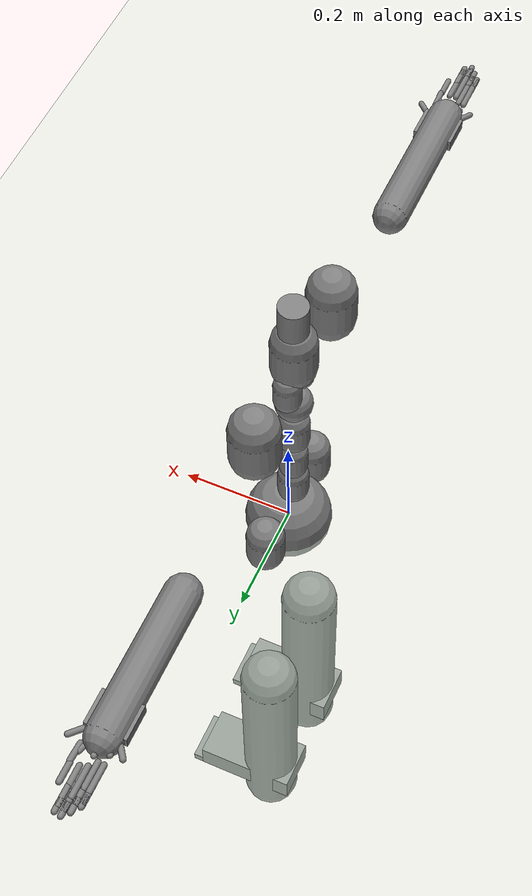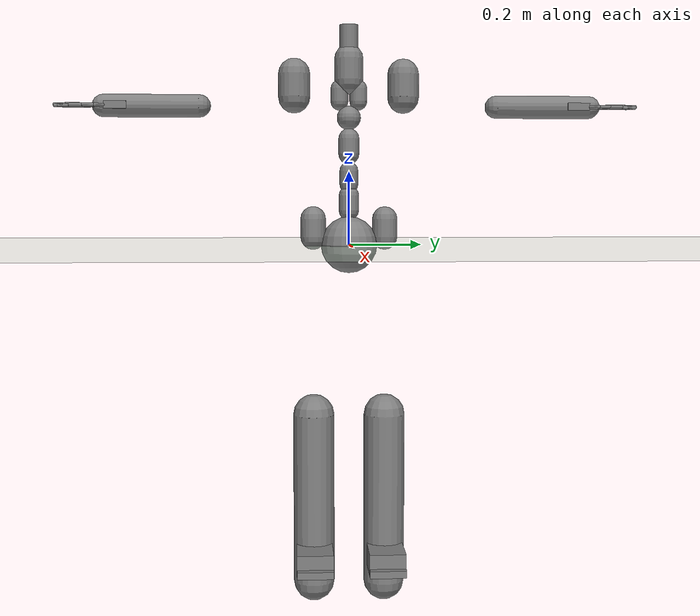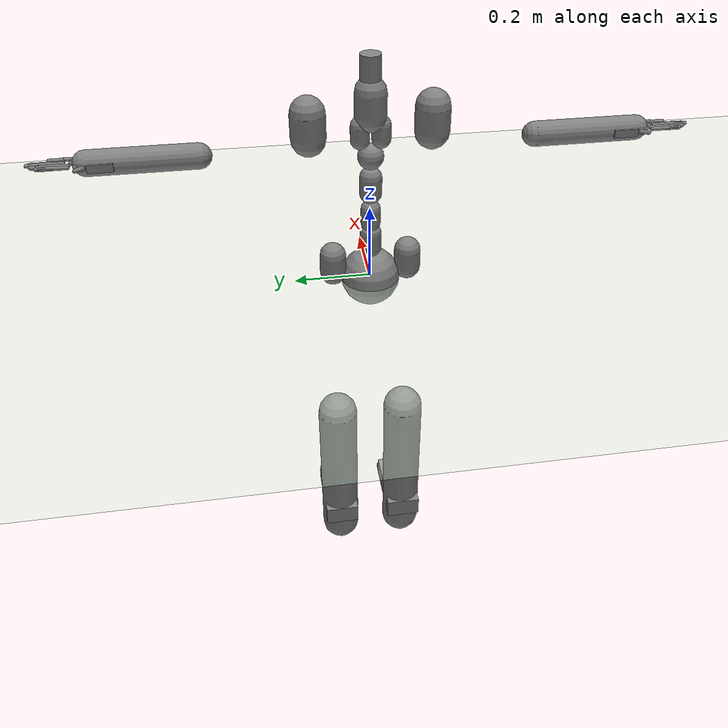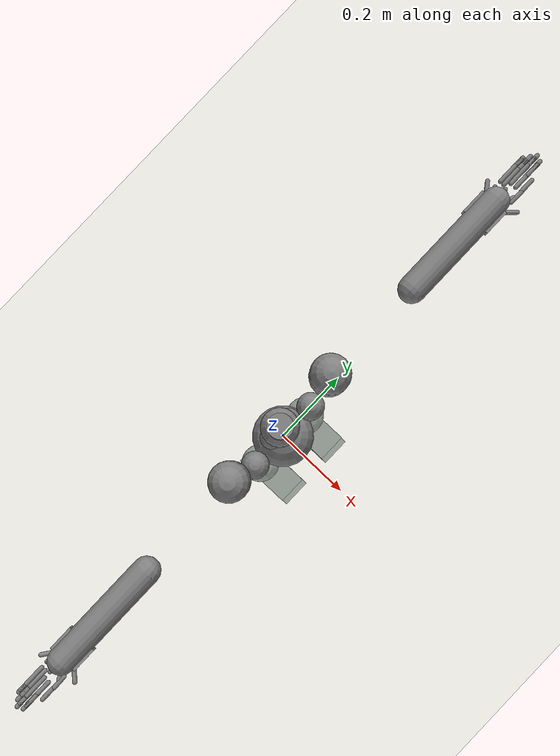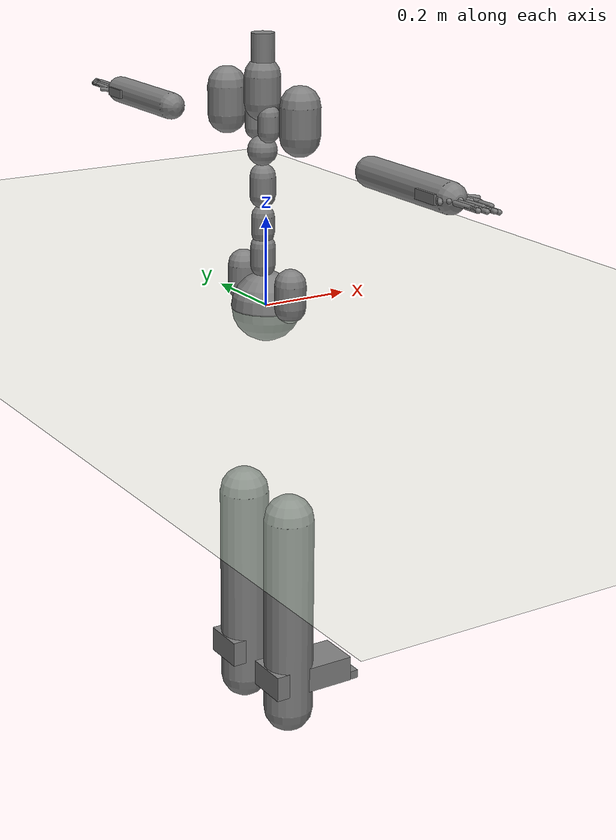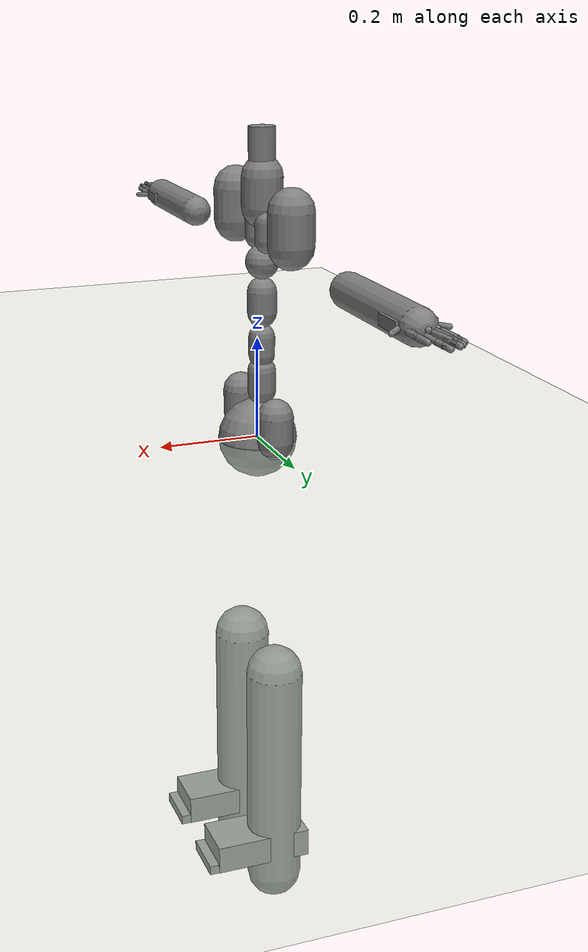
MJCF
<?xml version="1.0" ?>
<mujoco model="humanoid">
  <compiler coordinate="local"/>
  <statistic extent="2" center="0 0 1"/>
  <option timestep="0.00555"/>
  <default>
    <motor ctrlrange="-1 1" ctrllimited="true"/>
    <geom type="capsule" condim="1" friction="1.0 0.05 0.05" solimp=".9 .99 .003" solref=".015 1"/>
    <joint type="hinge" damping="0.1" stiffness="5" armature=".007" limited="true" solimplimit="0 .99 .01"/>
    <site size=".04" group="3"/>
  </default>
  <asset>
    <texture type="skybox" builtin="gradient" rgb1=".4 .5 .6" rgb2="0 0 0" width="100" height="100"/>
    <texture builtin="flat" height="1278" mark="cross" markrgb="1 1 1" name="texgeom" random="0.01" rgb1="0.8 0.6 0.4" rgb2="0.8 0.6 0.4" type="cube" width="127"/>
    <texture builtin="checker" height="100" name="texplane" rgb1="0 0 0" rgb2="0.8 0.8 0.8" type="2d" width="100"/>
    <material name="MatPlane" reflectance="0.5" shininess="1" specular="1" texrepeat="60 60" texture="texplane"/>
    <material name="geom" texture="texgeom" texuniform="true"/>
  </asset>
  <worldbody>
    <light cutoff="100" diffuse="1 1 1" dir="-0 0 -1.3" directional="true" exponent="1" pos="0 0 1.3" specular=".1 .1 .1"/>
    <geom conaffinity="1" condim="3" name="floor" pos="0 0 0" rgba="0.8 0.9 0.8 1" size="100 100 .2" type="plane" material="MatPlane"/>
    <body name="pHipOrigin" pos="0 0 0">
      <freejoint name="pHipOrigin"/>
      <geom type="sphere" contype="1" conaffinity="1" density="4629.6296296296305" size="0.07771" pos="0.0000 0.0000 -0.0000"/>
      <body name="jL5S1" pos="-0.00875720 0 0.07881458">
        <geom type="capsule" contype="1" conaffinity="1" density="1000" fromto="0 0 0.01586 0 0 0.05551" size="0.02775"/>
        <joint name="jL5S1_x" type="hinge" pos="0 0 0" axis="1 0 0" stiffness="500" damping="500" armature="0.02" range="-180.0000 180.0000"/>
        <joint name="jL5S1_y" type="hinge" pos="0 0 0" axis="0 1 0" stiffness="500" damping="500" armature="0.02" range="-180.0000 180.0000"/>
        <joint name="jL5S1_z" type="hinge" pos="0 0 0" axis="0 0 1" stiffness="500" damping="500" armature="0.02" range="-180.0000 180.0000"/>
        <body name="jL4L3" pos="0 0 0.07258626">
          <geom type="capsule" contype="1" conaffinity="1" density="1000" fromto="0 0 0.01452 0 0 0.05081" size="0.02541"/>
          <joint name="jL4L3_x" type="hinge" pos="0 0 0" axis="1 0 0" stiffness="500" damping="500" armature="0.02" range="-180.0000 180.0000"/>
          <joint name="jL4L3_y" type="hinge" pos="0 0 0" axis="0 1 0" stiffness="500" damping="500" armature="0.02" range="-180.0000 180.0000"/>
          <joint name="jL4L3_z" type="hinge" pos="0 0 0" axis="0 0 1" stiffness="500" damping="500" armature="0.02" range="-180.0000 180.0000"/>
          <body name="jL1T12" pos="-0.00062804 0 0.08140562">
            <geom type="capsule" contype="1" conaffinity="1" density="1000" fromto="0 0 0.01628 0 0 0.05699" size="0.02849"/>
            <joint name="jL1T12_x" type="hinge" pos="0 0 0" axis="1 0 0" stiffness="500" damping="500" armature="0.02" range="-180.0000 180.0000"/>
            <joint name="jL1T12_y" type="hinge" pos="0 0 0" axis="0 1 0" stiffness="500" damping="500" armature="0.02" range="-180.0000 180.0000"/>
            <joint name="jL1T12_z" type="hinge" pos="0 0 0" axis="0 0 1" stiffness="500" damping="500" armature="0.02" range="-180.0000 180.0000"/>
            <body name="jT9T8" pos="-0.00062856 0 0.08131409">
              <geom type="sphere" contype="1" conaffinity="1" density="1000" size="0.03253" pos="0.000 0.0000 0.032527"/>
              <joint name="jT9T8_x" type="hinge" pos="0 0 0" axis="1 0 0" stiffness="500" damping="500" armature="0.02" range="-180.0000 180.0000"/>
              <joint name="jT9T8_y" type="hinge" pos="0 0 0" axis="0 1 0" stiffness="500" damping="500" armature="0.02" range="-180.0000 180.0000"/>
              <joint name="jT9T8_z" type="hinge" pos="0 0 0" axis="0 0 1" stiffness="500" damping="500" armature="0.02" range="-180.0000 180.0000"/>
              <body name="jT1C7" pos="0 0 0.11249700">
                <geom type="capsule" contype="1" conaffinity="1" density="1000" fromto="0 0 0.02250 0 0 0.07875" size="0.03937"/>
                <joint name="jT1C7_x" type="hinge" pos="0 0 0" axis="1 0 0" stiffness="500" damping="500" armature="0.02" range="-180.0000 180.0000"/>
                <joint name="jT1C7_y" type="hinge" pos="0 0 0" axis="0 1 0" stiffness="500" damping="500" armature="0.02" range="-180.0000 180.0000"/>
                <joint name="jT1C7_z" type="hinge" pos="0 0 0" axis="0 0 1" stiffness="500" damping="500" armature="0.02" range="-180.0000 180.0000"/>
                <body name="jC1Head" pos="0.00099683 0 0.08449399">
                  <geom type="cylinder" contype="1" conaffinity="1" density="1000" fromto="0 0 0 0 0 0.08450" size="0.02535"/>
                  <joint name="jC1Head_x" type="hinge" pos="0 0 0" axis="1 0 0" stiffness="500" damping="500" armature="0.02" range="-180.0000 180.0000"/>
                  <joint name="jC1Head_y" type="hinge" pos="0 0 0" axis="0 1 0" stiffness="500" damping="500" armature="0.02" range="-180.0000 180.0000"/>
                  <joint name="jC1Head_z" type="hinge" pos="0 0 0" axis="0 0 1" stiffness="500" damping="500" armature="0.02" range="-180.0000 180.0000"/>
                </body>
              </body>
              <body name="jRightT4Shoulder" pos="0 -0.02588692 0.06311798">
                <geom type="capsule" contype="1" conaffinity="1" density="1000" fromto="0 0 0.01364 0 0 0.04775" size="0.02388"/>
                <joint name="jRightT4Shoulder_x" type="hinge" pos="0 0 0" axis="1 0 0" stiffness="500" damping="500" armature="0.02" range="-180.0000 180.0000"/>
                <joint name="jRightT4Shoulder_y" type="hinge" pos="0 0 0" axis="0 1 0" stiffness="500" damping="500" armature="0.02" range="-180.0000 180.0000"/>
                <joint name="jRightT4Shoulder_z" type="hinge" pos="0 0 0" axis="0 0 1" stiffness="500" damping="500" armature="0.02" range="-180.0000 180.0000"/>
                <body name="jRightShoulder" pos="0 -0.12351258 0">
                  <geom type="capsule" contype="1" conaffinity="1" density="1000" fromto="0 0 0.02470 0 0 0.08646" size="0.04323"/>
                  <joint name="jRightShoulder_x" type="hinge" pos="0 0 0" axis="1 0 0" stiffness="500" damping="500" armature="0.02" range="-180.0000 180.0000"/>
                  <joint name="jRightShoulder_y" type="hinge" pos="0 0 0" axis="0 1 0" stiffness="500" damping="500" armature="0.02" range="-180.0000 180.0000"/>
                  <joint name="jRightShoulder_z" type="hinge" pos="0 0 0" axis="0 0 1" stiffness="500" damping="500" armature="0.02" range="-180.0000 180.0000"/>
                  <body name="jRightElbow" pos="0 -0.25775218 0">
                    <geom type="capsule" contype="1" conaffinity="1" density="1000" fromto="0 0 0 0.00000000 -0.25775218 0.00000000" size="0.03093"/>
                    <joint name="jRightElbow_x" type="hinge" pos="0 0 0" axis="1 0 0" stiffness="500" damping="500" armature="0.02" range="-180.0000 180.0000"/>
                    <joint name="jRightElbow_y" type="hinge" pos="0 0 0" axis="0 1 0" stiffness="500" damping="500" armature="0.02" range="-180.0000 180.0000"/>
                    <joint name="jRightElbow_z" type="hinge" pos="0 0 0" axis="0 0 1" stiffness="500" damping="500" armature="0.02" range="-180.0000 180.0000"/>
                    <body name="jRightWrist" pos="0.00008984 -0.22320440 0">
                      <geom density="1000" type="box" pos="0 0 0" size="0.035 0.03 0.01" quat="1.0000 0.0000 0.0000 0.0000"/>
                      <joint name="jRightWrist_x" type="hinge" pos="0 0 0" axis="1 0 0" stiffness="500" damping="500" armature="0.02" range="-180.0000 180.0000"/>
                      <joint name="jRightWrist_y" type="hinge" pos="0 0 0" axis="0 1 0" stiffness="500" damping="500" armature="0.02" range="-180.0000 180.0000"/>
                      <joint name="jRightWrist_z" type="hinge" pos="0 0 0" axis="0 0 1" stiffness="500" damping="500" armature="0.02" range="-180.0000 180.0000"/>
                      <body name="jRightFirstCMC" pos="0.02561320 -0.02455169 -0.00115992">
                        <geom type="capsule" contype="1" conaffinity="1" density="1000" fromto="0 0 0 0.02561320 -0.02455169 -0.00115992" size="0.005"/>
                        <joint name="jRightFirstCMC_x" type="hinge" pos="0 0 0" axis="1 0 0" stiffness="500" damping="500" armature="0.02" range="-180.0000 180.0000"/>
                        <joint name="jRightFirstCMC_y" type="hinge" pos="0 0 0" axis="0 1 0" stiffness="500" damping="500" armature="0.02" range="-180.0000 180.0000"/>
                        <joint name="jRightFirstCMC_z" type="hinge" pos="0 0 0" axis="0 0 1" stiffness="500" damping="500" armature="0.02" range="-180.0000 180.0000"/>
                        <body name="jRightFirstMCP" pos="0.00108986 -0.03075519 0.00064986">
                          <geom type="capsule" contype="1" conaffinity="1" density="1000" fromto="0 0 0 0.00108986 -0.03075519 0.00064986" size="0.005"/>
                          <joint name="jRightFirstMCP_x" type="hinge" pos="0 0 0" axis="1 0 0" stiffness="500" damping="500" armature="0.02" range="-180.0000 180.0000"/>
                          <joint name="jRightFirstMCP_y" type="hinge" pos="0 0 0" axis="0 1 0" stiffness="500" damping="500" armature="0.02" range="-180.0000 180.0000"/>
                          <joint name="jRightFirstMCP_z" type="hinge" pos="0 0 0" axis="0 0 1" stiffness="500" damping="500" armature="0.02" range="-180.0000 180.0000"/>
                          <body name="jRightIP" pos="0 -0.03230968 0">
                            <geom type="capsule" contype="1" conaffinity="1" density="1000" fromto="0 0 0 0.00000000 -0.03230968 0.00000000" size="0.005"/>
                            <joint name="jRightIP_x" type="hinge" pos="0 0 0" axis="1 0 0" stiffness="500" damping="500" armature="0.02" range="-180.0000 180.0000"/>
                            <joint name="jRightIP_y" type="hinge" pos="0 0 0" axis="0 1 0" stiffness="500" damping="500" armature="0.02" range="-180.0000 180.0000"/>
                            <joint name="jRightIP_z" type="hinge" pos="0 0 0" axis="0 0 1" stiffness="500" damping="500" armature="0.02" range="-180.0000 180.0000"/>
                          </body>
                        </body>
                      </body>
                      <body name="jRightSecondCMC" pos="0.01160341 -0.03390149 -0.00059132">
                        <geom type="capsule" contype="1" conaffinity="1" density="1000" fromto="0 0 0 0.01160341 -0.03390149 -0.00059132" size="0.005"/>
                        <joint name="jRightSecondCMC_x" type="hinge" pos="0 0 0" axis="1 0 0" stiffness="500" damping="500" armature="0.02" range="-180.0000 180.0000"/>
                        <joint name="jRightSecondCMC_y" type="hinge" pos="0 0 0" axis="0 1 0" stiffness="500" damping="500" armature="0.02" range="-180.0000 180.0000"/>
                        <joint name="jRightSecondCMC_z" type="hinge" pos="0 0 0" axis="0 0 1" stiffness="500" damping="500" armature="0.02" range="-180.0000 180.0000"/>
                        <body name="jRightSecondMCP" pos="-0.00033284 -0.05308607 -0.00055068">
                          <geom type="capsule" contype="1" conaffinity="1" density="1000" fromto="0 0 0 -0.00033284 -0.05308607 -0.00055068" size="0.005"/>
                          <joint name="jRightSecondMCP_x" type="hinge" pos="0 0 0" axis="1 0 0" stiffness="500" damping="500" armature="0.02" range="-180.0000 180.0000"/>
                          <joint name="jRightSecondMCP_y" type="hinge" pos="0 0 0" axis="0 1 0" stiffness="500" damping="500" armature="0.02" range="-180.0000 180.0000"/>
                          <joint name="jRightSecondMCP_z" type="hinge" pos="0 0 0" axis="0 0 1" stiffness="500" damping="500" armature="0.02" range="-180.0000 180.0000"/>
                          <body name="jRightSecondPIP" pos="0 -0.03424454 0">
                            <geom type="capsule" contype="1" conaffinity="1" density="1000" fromto="0 0 0 0.00000000 -0.03424454 0.00000000" size="0.005"/>
                            <joint name="jRightSecondPIP_x" type="hinge" pos="0 0 0" axis="1 0 0" stiffness="500" damping="500" armature="0.02" range="-180.0000 180.0000"/>
                            <joint name="jRightSecondPIP_y" type="hinge" pos="0 0 0" axis="0 1 0" stiffness="500" damping="500" armature="0.02" range="-180.0000 180.0000"/>
                            <joint name="jRightSecondPIP_z" type="hinge" pos="0 0 0" axis="0 0 1" stiffness="500" damping="500" armature="0.02" range="-180.0000 180.0000"/>
                            <body name="jRightSecondDIP" pos="0 -0.02055949 0">
                              <geom type="capsule" contype="1" conaffinity="1" density="1000" fromto="0 0 0 0.00000000 -0.02055949 0.00000000" size="0.005"/>
                              <joint name="jRightSecondDIP_x" type="hinge" pos="0 0 0" axis="1 0 0" stiffness="500" damping="500" armature="0.02" range="-180.0000 180.0000"/>
                              <joint name="jRightSecondDIP_y" type="hinge" pos="0 0 0" axis="0 1 0" stiffness="500" damping="500" armature="0.02" range="-180.0000 180.0000"/>
                              <joint name="jRightSecondDIP_z" type="hinge" pos="0 0 0" axis="0 0 1" stiffness="500" damping="500" armature="0.02" range="-180.0000 180.0000"/>
                            </body>
                          </body>
                        </body>
                      </body>
                      <body name="jRightThirdCMC" pos="-0.00061558 -0.03328935 0.00139953">
                        <geom type="capsule" contype="1" conaffinity="1" density="1000" fromto="0 0 0 -0.00061558 -0.03328935 0.00139953" size="0.005"/>
                        <joint name="jRightThirdCMC_x" type="hinge" pos="0 0 0" axis="1 0 0" stiffness="500" damping="500" armature="0.02" range="-180.0000 180.0000"/>
                        <joint name="jRightThirdCMC_y" type="hinge" pos="0 0 0" axis="0 1 0" stiffness="500" damping="500" armature="0.02" range="-180.0000 180.0000"/>
                        <joint name="jRightThirdCMC_z" type="hinge" pos="0 0 0" axis="0 0 1" stiffness="500" damping="500" armature="0.02" range="-180.0000 180.0000"/>
                        <body name="jRightThirdMCP" pos="-0.00061702 -0.05111980 0.00139077">
                          <geom type="capsule" contype="1" conaffinity="1" density="1000" fromto="0 0 0 -0.00061702 -0.05111980 0.00139077" size="0.005"/>
                          <joint name="jRightThirdMCP_x" type="hinge" pos="0 0 0" axis="1 0 0" stiffness="500" damping="500" armature="0.02" range="-180.0000 180.0000"/>
                          <joint name="jRightThirdMCP_y" type="hinge" pos="0 0 0" axis="0 1 0" stiffness="500" damping="500" armature="0.02" range="-180.0000 180.0000"/>
                          <joint name="jRightThirdMCP_z" type="hinge" pos="0 0 0" axis="0 0 1" stiffness="500" damping="500" armature="0.02" range="-180.0000 180.0000"/>
                          <body name="jRightThirdPIP" pos="0 -0.03745836 0">
                            <geom type="capsule" contype="1" conaffinity="1" density="1000" fromto="0 0 0 0.00000000 -0.03745836 0.00000000" size="0.005"/>
                            <joint name="jRightThirdPIP_x" type="hinge" pos="0 0 0" axis="1 0 0" stiffness="500" damping="500" armature="0.02" range="-180.0000 180.0000"/>
                            <joint name="jRightThirdPIP_y" type="hinge" pos="0 0 0" axis="0 1 0" stiffness="500" damping="500" armature="0.02" range="-180.0000 180.0000"/>
                            <joint name="jRightThirdPIP_z" type="hinge" pos="0 0 0" axis="0 0 1" stiffness="500" damping="500" armature="0.02" range="-180.0000 180.0000"/>
                            <body name="jRightThirdDIP" pos="0 -0.02212986 0">
                              <geom type="capsule" contype="1" conaffinity="1" density="1000" fromto="0 0 0 0.00000000 -0.02212986 0.00000000" size="0.005"/>
                              <joint name="jRightThirdDIP_x" type="hinge" pos="0 0 0" axis="1 0 0" stiffness="500" damping="500" armature="0.02" range="-180.0000 180.0000"/>
                              <joint name="jRightThirdDIP_y" type="hinge" pos="0 0 0" axis="0 1 0" stiffness="500" damping="500" armature="0.02" range="-180.0000 180.0000"/>
                              <joint name="jRightThirdDIP_z" type="hinge" pos="0 0 0" axis="0 0 1" stiffness="500" damping="500" armature="0.02" range="-180.0000 180.0000"/>
                            </body>
                          </body>
                        </body>
                      </body>
                      <body name="jRightFourthCMC" pos="-0.01015717 -0.02828940 0.00066589">
                        <geom type="capsule" contype="1" conaffinity="1" density="1000" fromto="0 0 0 -0.01015717 -0.02828940 0.00066589" size="0.005"/>
                        <joint name="jRightFourthCMC_x" type="hinge" pos="0 0 0" axis="1 0 0" stiffness="500" damping="500" armature="0.02" range="-180.0000 180.0000"/>
                        <joint name="jRightFourthCMC_y" type="hinge" pos="0 0 0" axis="0 1 0" stiffness="500" damping="500" armature="0.02" range="-180.0000 180.0000"/>
                        <joint name="jRightFourthCMC_z" type="hinge" pos="0 0 0" axis="0 0 1" stiffness="500" damping="500" armature="0.02" range="-180.0000 180.0000"/>
                        <body name="jRightFourthMCP" pos="-0.00032481 -0.04451847 0.00069942">
                          <geom type="capsule" contype="1" conaffinity="1" density="1000" fromto="0 0 0 -0.00032481 -0.04451847 0.00069942" size="0.005"/>
                          <joint name="jRightFourthMCP_x" type="hinge" pos="0 0 0" axis="1 0 0" stiffness="500" damping="500" armature="0.02" range="-180.0000 180.0000"/>
                          <joint name="jRightFourthMCP_y" type="hinge" pos="0 0 0" axis="0 1 0" stiffness="500" damping="500" armature="0.02" range="-180.0000 180.0000"/>
                          <joint name="jRightFourthMCP_z" type="hinge" pos="0 0 0" axis="0 0 1" stiffness="500" damping="500" armature="0.02" range="-180.0000 180.0000"/>
                          <body name="jRightFourthPIP" pos="0 -0.03571399 0">
                            <geom type="capsule" contype="1" conaffinity="1" density="1000" fromto="0 0 0 0.00000000 -0.03571399 0.00000000" size="0.005"/>
                            <joint name="jRightFourthPIP_x" type="hinge" pos="0 0 0" axis="1 0 0" stiffness="500" damping="500" armature="0.02" range="-180.0000 180.0000"/>
                            <joint name="jRightFourthPIP_y" type="hinge" pos="0 0 0" axis="0 1 0" stiffness="500" damping="500" armature="0.02" range="-180.0000 180.0000"/>
                            <joint name="jRightFourthPIP_z" type="hinge" pos="0 0 0" axis="0 0 1" stiffness="500" damping="500" armature="0.02" range="-180.0000 180.0000"/>
                            <body name="jRightFourthDIP" pos="0 -0.02347310 0">
                              <geom type="capsule" contype="1" conaffinity="1" density="1000" fromto="0 0 0 0.00000000 -0.02347310 0.00000000" size="0.005"/>
                              <joint name="jRightFourthDIP_x" type="hinge" pos="0 0 0" axis="1 0 0" stiffness="500" damping="500" armature="0.02" range="-180.0000 180.0000"/>
                              <joint name="jRightFourthDIP_y" type="hinge" pos="0 0 0" axis="0 1 0" stiffness="500" damping="500" armature="0.02" range="-180.0000 180.0000"/>
                              <joint name="jRightFourthDIP_z" type="hinge" pos="0 0 0" axis="0 0 1" stiffness="500" damping="500" armature="0.02" range="-180.0000 180.0000"/>
                            </body>
                          </body>
                        </body>
                      </body>
                      <body name="jRightFifthCMC" pos="-0.01986545 -0.02768024 0.00054604">
                        <geom type="capsule" contype="1" conaffinity="1" density="1000" fromto="0 0 0 -0.01986545 -0.02768024 0.00054604" size="0.005"/>
                        <joint name="jRightFifthCMC_x" type="hinge" pos="0 0 0" axis="1 0 0" stiffness="500" damping="500" armature="0.02" range="-180.0000 180.0000"/>
                        <joint name="jRightFifthCMC_y" type="hinge" pos="0 0 0" axis="0 1 0" stiffness="500" damping="500" armature="0.02" range="-180.0000 180.0000"/>
                        <joint name="jRightFifthCMC_z" type="hinge" pos="0 0 0" axis="0 0 1" stiffness="500" damping="500" armature="0.02" range="-180.0000 180.0000"/>
                        <body name="jRightFifthMCP" pos="-0.00000676 -0.04575183 0.00062960">
                          <geom type="capsule" contype="1" conaffinity="1" density="1000" fromto="0 0 0 -0.00000676 -0.04575183 0.00062960" size="0.005"/>
                          <joint name="jRightFifthMCP_x" type="hinge" pos="0 0 0" axis="1 0 0" stiffness="500" damping="500" armature="0.02" range="-180.0000 180.0000"/>
                          <joint name="jRightFifthMCP_y" type="hinge" pos="0 0 0" axis="0 1 0" stiffness="500" damping="500" armature="0.02" range="-180.0000 180.0000"/>
                          <joint name="jRightFifthMCP_z" type="hinge" pos="0 0 0" axis="0 0 1" stiffness="500" damping="500" armature="0.02" range="-180.0000 180.0000"/>
                          <body name="jRightFifthPIP" pos="0 -0.03303117 0">
                            <geom type="capsule" contype="1" conaffinity="1" density="1000" fromto="0 0 0 0.00000000 -0.03303117 0.00000000" size="0.005"/>
                            <joint name="jRightFifthPIP_x" type="hinge" pos="0 0 0" axis="1 0 0" stiffness="500" damping="500" armature="0.02" range="-180.0000 180.0000"/>
                            <joint name="jRightFifthPIP_y" type="hinge" pos="0 0 0" axis="0 1 0" stiffness="500" damping="500" armature="0.02" range="-180.0000 180.0000"/>
                            <joint name="jRightFifthPIP_z" type="hinge" pos="0 0 0" axis="0 0 1" stiffness="500" damping="500" armature="0.02" range="-180.0000 180.0000"/>
                            <body name="jRightFifthDIP" pos="0 -0.01798905 0">
                              <geom type="capsule" contype="1" conaffinity="1" density="1000" fromto="0 0 0 0.00000000 -0.01798905 0.00000000" size="0.005"/>
                              <joint name="jRightFifthDIP_x" type="hinge" pos="0 0 0" axis="1 0 0" stiffness="500" damping="500" armature="0.02" range="-180.0000 180.0000"/>
                              <joint name="jRightFifthDIP_y" type="hinge" pos="0 0 0" axis="0 1 0" stiffness="500" damping="500" armature="0.02" range="-180.0000 180.0000"/>
                              <joint name="jRightFifthDIP_z" type="hinge" pos="0 0 0" axis="0 0 1" stiffness="500" damping="500" armature="0.02" range="-180.0000 180.0000"/>
                            </body>
                          </body>
                        </body>
                      </body>
                    </body>
                  </body>
                </body>
              </body>
              <body name="jLeftT4Shoulder" pos="0 0.02591224 0.06317973">
                <geom type="capsule" contype="1" conaffinity="1" density="1000" fromto="0 0 0.01366 0 0 0.04780" size="0.02390"/>
                <joint name="jLeftT4Shoulder_x" type="hinge" pos="0 0 0" axis="1 0 0" stiffness="500" damping="500" armature="0.02" range="-180.0000 180.0000"/>
                <joint name="jLeftT4Shoulder_y" type="hinge" pos="0 0 0" axis="0 1 0" stiffness="500" damping="500" armature="0.02" range="-180.0000 180.0000"/>
                <joint name="jLeftT4Shoulder_z" type="hinge" pos="0 0 0" axis="0 0 1" stiffness="500" damping="500" armature="0.02" range="-180.0000 180.0000"/>
                <body name="jLeftShoulder" pos="0 0.12311524 0">
                  <geom type="capsule" contype="1" conaffinity="1" density="1000" fromto="0 0 0.02462 0 0 0.08618" size="0.04309"/>
                  <joint name="jLeftShoulder_x" type="hinge" pos="0 0 0" axis="1 0 0" stiffness="500" damping="500" armature="0.02" range="-180.0000 180.0000"/>
                  <joint name="jLeftShoulder_y" type="hinge" pos="0 0 0" axis="0 1 0" stiffness="500" damping="500" armature="0.02" range="-180.0000 180.0000"/>
                  <joint name="jLeftShoulder_z" type="hinge" pos="0 0 0" axis="0 0 1" stiffness="500" damping="500" armature="0.02" range="-180.0000 180.0000"/>
                  <body name="jLeftElbow" pos="0 0.25745028 0">
                    <geom type="capsule" contype="1" conaffinity="1" density="1000" fromto="0 0 0 0.00000000 0.25745028 0.00000000" size="0.03089"/>
                    <joint name="jLeftElbow_x" type="hinge" pos="0 0 0" axis="1 0 0" stiffness="500" damping="500" armature="0.02" range="-180.0000 180.0000"/>
                    <joint name="jLeftElbow_y" type="hinge" pos="0 0 0" axis="0 1 0" stiffness="500" damping="500" armature="0.02" range="-180.0000 180.0000"/>
                    <joint name="jLeftElbow_z" type="hinge" pos="0 0 0" axis="0 0 1" stiffness="500" damping="500" armature="0.02" range="-180.0000 180.0000"/>
                    <body name="jLeftWrist" pos="0.00008975 0.22298450 0">
                      <geom density="1000" type="box" pos="0 0 0" size="0.035 0.03 0.01" quat="1.0000 0.0000 0.0000 0.0000"/>
                      <joint name="jLeftWrist_x" type="hinge" pos="0 0 0" axis="1 0 0" stiffness="500" damping="500" armature="0.02" range="-180.0000 180.0000"/>
                      <joint name="jLeftWrist_y" type="hinge" pos="0 0 0" axis="0 1 0" stiffness="500" damping="500" armature="0.02" range="-180.0000 180.0000"/>
                      <joint name="jLeftWrist_z" type="hinge" pos="0 0 0" axis="0 0 1" stiffness="500" damping="500" armature="0.02" range="-180.0000 180.0000"/>
                      <body name="jLeftFirstCMC" pos="0.02506929 0.02512849 -0.00112202">
                        <geom type="capsule" contype="1" conaffinity="1" density="1000" fromto="0 0 0 0.02506929 0.02512849 -0.00112202" size="0.005"/>
                        <joint name="jLeftFirstCMC_x" type="hinge" pos="0 0 0" axis="1 0 0" stiffness="500" damping="500" armature="0.02" range="-180.0000 180.0000"/>
                        <joint name="jLeftFirstCMC_y" type="hinge" pos="0 0 0" axis="0 1 0" stiffness="500" damping="500" armature="0.02" range="-180.0000 180.0000"/>
                        <joint name="jLeftFirstCMC_z" type="hinge" pos="0 0 0" axis="0 0 1" stiffness="500" damping="500" armature="0.02" range="-180.0000 180.0000"/>
                        <body name="jLeftFirstMCP" pos="0.00107936 0.03075450 0.00063331">
                          <geom type="capsule" contype="1" conaffinity="1" density="1000" fromto="0 0 0 0.00107936 0.03075450 0.00063331" size="0.005"/>
                          <joint name="jLeftFirstMCP_x" type="hinge" pos="0 0 0" axis="1 0 0" stiffness="500" damping="500" armature="0.02" range="-180.0000 180.0000"/>
                          <joint name="jLeftFirstMCP_y" type="hinge" pos="0 0 0" axis="0 1 0" stiffness="500" damping="500" armature="0.02" range="-180.0000 180.0000"/>
                          <joint name="jLeftFirstMCP_z" type="hinge" pos="0 0 0" axis="0 0 1" stiffness="500" damping="500" armature="0.02" range="-180.0000 180.0000"/>
                          <body name="jLeftIP" pos="0 0.03230968 0">
                            <geom type="capsule" contype="1" conaffinity="1" density="1000" fromto="0 0 0 0.00000000 0.03230968 0.00000000" size="0.005"/>
                            <joint name="jLeftIP_x" type="hinge" pos="0 0 0" axis="1 0 0" stiffness="500" damping="500" armature="0.02" range="-180.0000 180.0000"/>
                            <joint name="jLeftIP_y" type="hinge" pos="0 0 0" axis="0 1 0" stiffness="500" damping="500" armature="0.02" range="-180.0000 180.0000"/>
                            <joint name="jLeftIP_z" type="hinge" pos="0 0 0" axis="0 0 1" stiffness="500" damping="500" armature="0.02" range="-180.0000 180.0000"/>
                          </body>
                        </body>
                      </body>
                      <body name="jLeftSecondCMC" pos="0.01173706 0.03383911 -0.00059621">
                        <geom type="capsule" contype="1" conaffinity="1" density="1000" fromto="0 0 0 0.01173706 0.03383911 -0.00059621" size="0.005"/>
                        <joint name="jLeftSecondCMC_x" type="hinge" pos="0 0 0" axis="1 0 0" stiffness="500" damping="500" armature="0.02" range="-180.0000 180.0000"/>
                        <joint name="jLeftSecondCMC_y" type="hinge" pos="0 0 0" axis="0 1 0" stiffness="500" damping="500" armature="0.02" range="-180.0000 180.0000"/>
                        <joint name="jLeftSecondCMC_z" type="hinge" pos="0 0 0" axis="0 0 1" stiffness="500" damping="500" armature="0.02" range="-180.0000 180.0000"/>
                        <body name="jLeftSecondMCP" pos="-0.00029022 0.05308716 -0.00055748">
                          <geom type="capsule" contype="1" conaffinity="1" density="1000" fromto="0 0 0 -0.00029022 0.05308716 -0.00055748" size="0.005"/>
                          <joint name="jLeftSecondMCP_x" type="hinge" pos="0 0 0" axis="1 0 0" stiffness="500" damping="500" armature="0.02" range="-180.0000 180.0000"/>
                          <joint name="jLeftSecondMCP_y" type="hinge" pos="0 0 0" axis="0 1 0" stiffness="500" damping="500" armature="0.02" range="-180.0000 180.0000"/>
                          <joint name="jLeftSecondMCP_z" type="hinge" pos="0 0 0" axis="0 0 1" stiffness="500" damping="500" armature="0.02" range="-180.0000 180.0000"/>
                          <body name="jLeftSecondPIP" pos="0 0.03424454 0">
                            <geom type="capsule" contype="1" conaffinity="1" density="1000" fromto="0 0 0 0.00000000 0.03424454 0.00000000" size="0.005"/>
                            <joint name="jLeftSecondPIP_x" type="hinge" pos="0 0 0" axis="1 0 0" stiffness="500" damping="500" armature="0.02" range="-180.0000 180.0000"/>
                            <joint name="jLeftSecondPIP_y" type="hinge" pos="0 0 0" axis="0 1 0" stiffness="500" damping="500" armature="0.02" range="-180.0000 180.0000"/>
                            <joint name="jLeftSecondPIP_z" type="hinge" pos="0 0 0" axis="0 0 1" stiffness="500" damping="500" armature="0.02" range="-180.0000 180.0000"/>
                            <body name="jLeftSecondDIP" pos="0 0.02055949 0">
                              <geom type="capsule" contype="1" conaffinity="1" density="1000" fromto="0 0 0 0.00000000 0.02055949 0.00000000" size="0.005"/>
                              <joint name="jLeftSecondDIP_x" type="hinge" pos="0 0 0" axis="1 0 0" stiffness="500" damping="500" armature="0.02" range="-180.0000 180.0000"/>
                              <joint name="jLeftSecondDIP_y" type="hinge" pos="0 0 0" axis="0 1 0" stiffness="500" damping="500" armature="0.02" range="-180.0000 180.0000"/>
                              <joint name="jLeftSecondDIP_z" type="hinge" pos="0 0 0" axis="0 0 1" stiffness="500" damping="500" armature="0.02" range="-180.0000 180.0000"/>
                            </body>
                          </body>
                        </body>
                      </body>
                      <body name="jLeftThirdCMC" pos="-0.00061920 0.03329234 0.00135288">
                        <geom type="capsule" contype="1" conaffinity="1" density="1000" fromto="0 0 0 -0.00061920 0.03329234 0.00135288" size="0.005"/>
                        <joint name="jLeftThirdCMC_x" type="hinge" pos="0 0 0" axis="1 0 0" stiffness="500" damping="500" armature="0.02" range="-180.0000 180.0000"/>
                        <joint name="jLeftThirdCMC_y" type="hinge" pos="0 0 0" axis="0 1 0" stiffness="500" damping="500" armature="0.02" range="-180.0000 180.0000"/>
                        <joint name="jLeftThirdCMC_z" type="hinge" pos="0 0 0" axis="0 0 1" stiffness="500" damping="500" armature="0.02" range="-180.0000 180.0000"/>
                        <body name="jLeftThirdMCP" pos="-0.00062200 0.05112079 0.00136281">
                          <geom type="capsule" contype="1" conaffinity="1" density="1000" fromto="0 0 0 -0.00062200 0.05112079 0.00136281" size="0.005"/>
                          <joint name="jLeftThirdMCP_x" type="hinge" pos="0 0 0" axis="1 0 0" stiffness="500" damping="500" armature="0.02" range="-180.0000 180.0000"/>
                          <joint name="jLeftThirdMCP_y" type="hinge" pos="0 0 0" axis="0 1 0" stiffness="500" damping="500" armature="0.02" range="-180.0000 180.0000"/>
                          <joint name="jLeftThirdMCP_z" type="hinge" pos="0 0 0" axis="0 0 1" stiffness="500" damping="500" armature="0.02" range="-180.0000 180.0000"/>
                          <body name="jLeftThirdPIP" pos="0 0.03745836 0">
                            <geom type="capsule" contype="1" conaffinity="1" density="1000" fromto="0 0 0 0.00000000 0.03745836 0.00000000" size="0.005"/>
                            <joint name="jLeftThirdPIP_x" type="hinge" pos="0 0 0" axis="1 0 0" stiffness="500" damping="500" armature="0.02" range="-180.0000 180.0000"/>
                            <joint name="jLeftThirdPIP_y" type="hinge" pos="0 0 0" axis="0 1 0" stiffness="500" damping="500" armature="0.02" range="-180.0000 180.0000"/>
                            <joint name="jLeftThirdPIP_z" type="hinge" pos="0 0 0" axis="0 0 1" stiffness="500" damping="500" armature="0.02" range="-180.0000 180.0000"/>
                            <body name="jLeftThirdDIP" pos="0 0.02212986 0">
                              <geom type="capsule" contype="1" conaffinity="1" density="1000" fromto="0 0 0 0.00000000 0.02212986 0.00000000" size="0.005"/>
                              <joint name="jLeftThirdDIP_x" type="hinge" pos="0 0 0" axis="1 0 0" stiffness="500" damping="500" armature="0.02" range="-180.0000 180.0000"/>
                              <joint name="jLeftThirdDIP_y" type="hinge" pos="0 0 0" axis="0 1 0" stiffness="500" damping="500" armature="0.02" range="-180.0000 180.0000"/>
                              <joint name="jLeftThirdDIP_z" type="hinge" pos="0 0 0" axis="0 0 1" stiffness="500" damping="500" armature="0.02" range="-180.0000 180.0000"/>
                            </body>
                          </body>
                        </body>
                      </body>
                      <body name="jLeftFourthCMC" pos="-0.01052987 0.02814470 0.00071083">
                        <geom type="capsule" contype="1" conaffinity="1" density="1000" fromto="0 0 0 -0.01052987 0.02814470 0.00071083" size="0.005"/>
                        <joint name="jLeftFourthCMC_x" type="hinge" pos="0 0 0" axis="1 0 0" stiffness="500" damping="500" armature="0.02" range="-180.0000 180.0000"/>
                        <joint name="jLeftFourthCMC_y" type="hinge" pos="0 0 0" axis="0 1 0" stiffness="500" damping="500" armature="0.02" range="-180.0000 180.0000"/>
                        <joint name="jLeftFourthCMC_z" type="hinge" pos="0 0 0" axis="0 0 1" stiffness="500" damping="500" armature="0.02" range="-180.0000 180.0000"/>
                        <body name="jLeftFourthMCP" pos="-0.00034930 0.04451592 0.00073972">
                          <geom type="capsule" contype="1" conaffinity="1" density="1000" fromto="0 0 0 -0.00034930 0.04451592 0.00073972" size="0.005"/>
                          <joint name="jLeftFourthMCP_x" type="hinge" pos="0 0 0" axis="1 0 0" stiffness="500" damping="500" armature="0.02" range="-180.0000 180.0000"/>
                          <joint name="jLeftFourthMCP_y" type="hinge" pos="0 0 0" axis="0 1 0" stiffness="500" damping="500" armature="0.02" range="-180.0000 180.0000"/>
                          <joint name="jLeftFourthMCP_z" type="hinge" pos="0 0 0" axis="0 0 1" stiffness="500" damping="500" armature="0.02" range="-180.0000 180.0000"/>
                          <body name="jLeftFourthPIP" pos="0 0.03571399 0">
                            <geom type="capsule" contype="1" conaffinity="1" density="1000" fromto="0 0 0 0.00000000 0.03571399 0.00000000" size="0.005"/>
                            <joint name="jLeftFourthPIP_x" type="hinge" pos="0 0 0" axis="1 0 0" stiffness="500" damping="500" armature="0.02" range="-180.0000 180.0000"/>
                            <joint name="jLeftFourthPIP_y" type="hinge" pos="0 0 0" axis="0 1 0" stiffness="500" damping="500" armature="0.02" range="-180.0000 180.0000"/>
                            <joint name="jLeftFourthPIP_z" type="hinge" pos="0 0 0" axis="0 0 1" stiffness="500" damping="500" armature="0.02" range="-180.0000 180.0000"/>
                            <body name="jLeftFourthDIP" pos="0 0.02347310 0">
                              <geom type="capsule" contype="1" conaffinity="1" density="1000" fromto="0 0 0 0.00000000 0.02347310 0.00000000" size="0.005"/>
                              <joint name="jLeftFourthDIP_x" type="hinge" pos="0 0 0" axis="1 0 0" stiffness="500" damping="500" armature="0.02" range="-180.0000 180.0000"/>
                              <joint name="jLeftFourthDIP_y" type="hinge" pos="0 0 0" axis="0 1 0" stiffness="500" damping="500" armature="0.02" range="-180.0000 180.0000"/>
                              <joint name="jLeftFourthDIP_z" type="hinge" pos="0 0 0" axis="0 0 1" stiffness="500" damping="500" armature="0.02" range="-180.0000 180.0000"/>
                            </body>
                          </body>
                        </body>
                      </body>
                      <body name="jLeftFifthCMC" pos="-0.02046726 0.02724264 0.00055482">
                        <geom type="capsule" contype="1" conaffinity="1" density="1000" fromto="0 0 0 -0.02046726 0.02724264 0.00055482" size="0.005"/>
                        <joint name="jLeftFifthCMC_x" type="hinge" pos="0 0 0" axis="1 0 0" stiffness="500" damping="500" armature="0.02" range="-180.0000 180.0000"/>
                        <joint name="jLeftFifthCMC_y" type="hinge" pos="0 0 0" axis="0 1 0" stiffness="500" damping="500" armature="0.02" range="-180.0000 180.0000"/>
                        <joint name="jLeftFifthCMC_z" type="hinge" pos="0 0 0" axis="0 0 1" stiffness="500" damping="500" armature="0.02" range="-180.0000 180.0000"/>
                        <body name="jLeftFifthMCP" pos="-0.00001298 0.04575058 0.00065832">
                          <geom type="capsule" contype="1" conaffinity="1" density="1000" fromto="0 0 0 -0.00001298 0.04575058 0.00065832" size="0.005"/>
                          <joint name="jLeftFifthMCP_x" type="hinge" pos="0 0 0" axis="1 0 0" stiffness="500" damping="500" armature="0.02" range="-180.0000 180.0000"/>
                          <joint name="jLeftFifthMCP_y" type="hinge" pos="0 0 0" axis="0 1 0" stiffness="500" damping="500" armature="0.02" range="-180.0000 180.0000"/>
                          <joint name="jLeftFifthMCP_z" type="hinge" pos="0 0 0" axis="0 0 1" stiffness="500" damping="500" armature="0.02" range="-180.0000 180.0000"/>
                          <body name="jLeftFifthPIP" pos="0 0.03303117 0">
                            <geom type="capsule" contype="1" conaffinity="1" density="1000" fromto="0 0 0 0.00000000 0.03303117 0.00000000" size="0.005"/>
                            <joint name="jLeftFifthPIP_x" type="hinge" pos="0 0 0" axis="1 0 0" stiffness="500" damping="500" armature="0.02" range="-180.0000 180.0000"/>
                            <joint name="jLeftFifthPIP_y" type="hinge" pos="0 0 0" axis="0 1 0" stiffness="500" damping="500" armature="0.02" range="-180.0000 180.0000"/>
                            <joint name="jLeftFifthPIP_z" type="hinge" pos="0 0 0" axis="0 0 1" stiffness="500" damping="500" armature="0.02" range="-180.0000 180.0000"/>
                            <body name="jLeftFifthDIP" pos="0 0.01798905 0">
                              <geom type="capsule" contype="1" conaffinity="1" density="1000" fromto="0 0 0 0.00000000 0.01798905 0.00000000" size="0.005"/>
                              <joint name="jLeftFifthDIP_x" type="hinge" pos="0 0 0" axis="1 0 0" stiffness="500" damping="500" armature="0.02" range="-180.0000 180.0000"/>
                              <joint name="jLeftFifthDIP_y" type="hinge" pos="0 0 0" axis="0 1 0" stiffness="500" damping="500" armature="0.02" range="-180.0000 180.0000"/>
                              <joint name="jLeftFifthDIP_z" type="hinge" pos="0 0 0" axis="0 0 1" stiffness="500" damping="500" armature="0.02" range="-180.0000 180.0000"/>
                            </body>
                          </body>
                        </body>
                      </body>
                    </body>
                  </body>
                </body>
              </body>
            </body>
          </body>
        </body>
      </body>
      <body name="jRightHip" pos="-0.00016692 -0.09905827 0.00150268">
        <geom type="capsule" contype="1" conaffinity="1" density="1000" fromto="0 0 0.01981 0 0 0.06935" size="0.03467"/>
        <joint name="jRightHip_x" type="hinge" pos="0 0 0" axis="1 0 0" stiffness="500" damping="500" armature="0.02" range="-180.0000 180.0000"/>
        <joint name="jRightHip_y" type="hinge" pos="0 0 0" axis="0 1 0" stiffness="500" damping="500" armature="0.02" range="-180.0000 180.0000"/>
        <joint name="jRightHip_z" type="hinge" pos="0 0 0" axis="0 0 1" stiffness="500" damping="500" armature="0.02" range="-180.0000 180.0000"/>
        <body name="jRightKnee" pos="0.00005683 0 -0.47666677">
          <geom type="capsule" contype="1" conaffinity="1" density="1000" fromto="0 0 0 0.00005683 0.00000000 -0.47666677" size="0.05720"/>
          <joint name="jRightKnee_x" type="hinge" pos="0 0 0" axis="1 0 0" stiffness="500" damping="500" armature="0.02" range="-180.0000 180.0000"/>
          <joint name="jRightKnee_y" type="hinge" pos="0 0 0" axis="0 1 0" stiffness="500" damping="500" armature="0.02" range="-180.0000 180.0000"/>
          <joint name="jRightKnee_z" type="hinge" pos="0 0 0" axis="0 0 1" stiffness="500" damping="500" armature="0.02" range="-180.0000 180.0000"/>
          <body name="jRightAnkle" pos="0.00041078 0 -0.36380002">
            <geom density="1000" type="box" pos="0.04 0. -0.03" size="0.1 0.05 0.03" quat="1.0 0 0 0"/>
            <joint name="jRightAnkle_x" type="hinge" pos="0 0 0" axis="1 0 0" stiffness="500" damping="500" armature="0.02" range="-180.0000 180.0000"/>
            <joint name="jRightAnkle_y" type="hinge" pos="0 0 0" axis="0 1 0" stiffness="500" damping="500" armature="0.02" range="-180.0000 180.0000"/>
            <joint name="jRightAnkle_z" type="hinge" pos="0 0 0" axis="0 0 1" stiffness="500" damping="500" armature="0.02" range="-180.0000 180.0000"/>
            <body name="jRightBallFoot" pos="0.15036100 0 -0.06897977">
              <geom density="1000" type="box" pos="0 0 0.02" size="0.01 0.05 0.01" quat="1.0 0 0 0"/>
              <joint name="jRightBallFoot_x" type="hinge" pos="0 0 0" axis="1 0 0" stiffness="500" damping="500" armature="0.02" range="-180.0000 180.0000"/>
              <joint name="jRightBallFoot_y" type="hinge" pos="0 0 0" axis="0 1 0" stiffness="500" damping="500" armature="0.02" range="-180.0000 180.0000"/>
              <joint name="jRightBallFoot_z" type="hinge" pos="0 0 0" axis="0 0 1" stiffness="500" damping="500" armature="0.02" range="-180.0000 180.0000"/>
            </body>
          </body>
        </body>
      </body>
      <body name="jLeftHip" pos="-0.00016418 0.09870237 0.00147748">
        <geom type="capsule" contype="1" conaffinity="1" density="1000" fromto="0 0 0.01974 0 0 0.06910" size="0.03455"/>
        <joint name="jLeftHip_x" type="hinge" pos="0 0 0" axis="1 0 0" stiffness="500" damping="500" armature="0.02" range="-180.0000 180.0000"/>
        <joint name="jLeftHip_y" type="hinge" pos="0 0 0" axis="0 1 0" stiffness="500" damping="500" armature="0.02" range="-180.0000 180.0000"/>
        <joint name="jLeftHip_z" type="hinge" pos="0 0 0" axis="0 0 1" stiffness="500" damping="500" armature="0.02" range="-180.0000 180.0000"/>
        <body name="jLeftKnee" pos="0.00005687 0 -0.47694921">
          <geom type="capsule" contype="1" conaffinity="1" density="1000" fromto="0 0 0 0.00005687 0.00000000 -0.47694921" size="0.05723"/>
          <joint name="jLeftKnee_x" type="hinge" pos="0 0 0" axis="1 0 0" stiffness="500" damping="500" armature="0.02" range="-180.0000 180.0000"/>
          <joint name="jLeftKnee_y" type="hinge" pos="0 0 0" axis="0 1 0" stiffness="500" damping="500" armature="0.02" range="-180.0000 180.0000"/>
          <joint name="jLeftKnee_z" type="hinge" pos="0 0 0" axis="0 0 1" stiffness="500" damping="500" armature="0.02" range="-180.0000 180.0000"/>
          <body name="jLeftAnkle" pos="0.00041078 0 -0.36380008">
            <geom density="1000" type="box" pos="0.04 0. -0.03" size="0.1 0.05 0.03" quat="1.0 0 0 0"/>
            <joint name="jLeftAnkle_x" type="hinge" pos="0 0 0" axis="1 0 0" stiffness="500" damping="500" armature="0.02" range="-180.0000 180.0000"/>
            <joint name="jLeftAnkle_y" type="hinge" pos="0 0 0" axis="0 1 0" stiffness="500" damping="500" armature="0.02" range="-180.0000 180.0000"/>
            <joint name="jLeftAnkle_z" type="hinge" pos="0 0 0" axis="0 0 1" stiffness="500" damping="500" armature="0.02" range="-180.0000 180.0000"/>
            <body name="jLeftBallFoot" pos="0.15036101 0 -0.06897978">
              <geom density="1000" type="box" pos="0 0 0.02" size="0.01 0.05 0.01" quat="1.0 0 0 0"/>
              <joint name="jLeftBallFoot_x" type="hinge" pos="0 0 0" axis="1 0 0" stiffness="500" damping="500" armature="0.02" range="-180.0000 180.0000"/>
              <joint name="jLeftBallFoot_y" type="hinge" pos="0 0 0" axis="0 1 0" stiffness="500" damping="500" armature="0.02" range="-180.0000 180.0000"/>
              <joint name="jLeftBallFoot_z" type="hinge" pos="0 0 0" axis="0 0 1" stiffness="500" damping="500" armature="0.02" range="-180.0000 180.0000"/>
            </body>
          </body>
        </body>
      </body>
    </body>
  </worldbody>
  <actuator>
    <motor name="jL5S1_x" joint="jL5S1_x" gear="500"/>
    <motor name="jL5S1_y" joint="jL5S1_y" gear="500"/>
    <motor name="jL5S1_z" joint="jL5S1_z" gear="500"/>
    <motor name="jL4L3_x" joint="jL4L3_x" gear="500"/>
    <motor name="jL4L3_y" joint="jL4L3_y" gear="500"/>
    <motor name="jL4L3_z" joint="jL4L3_z" gear="500"/>
    <motor name="jL1T12_x" joint="jL1T12_x" gear="500"/>
    <motor name="jL1T12_y" joint="jL1T12_y" gear="500"/>
    <motor name="jL1T12_z" joint="jL1T12_z" gear="500"/>
    <motor name="jT9T8_x" joint="jT9T8_x" gear="500"/>
    <motor name="jT9T8_y" joint="jT9T8_y" gear="500"/>
    <motor name="jT9T8_z" joint="jT9T8_z" gear="500"/>
    <motor name="jT1C7_x" joint="jT1C7_x" gear="500"/>
    <motor name="jT1C7_y" joint="jT1C7_y" gear="500"/>
    <motor name="jT1C7_z" joint="jT1C7_z" gear="500"/>
    <motor name="jC1Head_x" joint="jC1Head_x" gear="500"/>
    <motor name="jC1Head_y" joint="jC1Head_y" gear="500"/>
    <motor name="jC1Head_z" joint="jC1Head_z" gear="500"/>
    <motor name="jRightT4Shoulder_x" joint="jRightT4Shoulder_x" gear="500"/>
    <motor name="jRightT4Shoulder_y" joint="jRightT4Shoulder_y" gear="500"/>
    <motor name="jRightT4Shoulder_z" joint="jRightT4Shoulder_z" gear="500"/>
    <motor name="jRightShoulder_x" joint="jRightShoulder_x" gear="500"/>
    <motor name="jRightShoulder_y" joint="jRightShoulder_y" gear="500"/>
    <motor name="jRightShoulder_z" joint="jRightShoulder_z" gear="500"/>
    <motor name="jRightElbow_x" joint="jRightElbow_x" gear="500"/>
    <motor name="jRightElbow_y" joint="jRightElbow_y" gear="500"/>
    <motor name="jRightElbow_z" joint="jRightElbow_z" gear="500"/>
    <motor name="jRightWrist_x" joint="jRightWrist_x" gear="500"/>
    <motor name="jRightWrist_y" joint="jRightWrist_y" gear="500"/>
    <motor name="jRightWrist_z" joint="jRightWrist_z" gear="500"/>
    <motor name="jLeftT4Shoulder_x" joint="jLeftT4Shoulder_x" gear="500"/>
    <motor name="jLeftT4Shoulder_y" joint="jLeftT4Shoulder_y" gear="500"/>
    <motor name="jLeftT4Shoulder_z" joint="jLeftT4Shoulder_z" gear="500"/>
    <motor name="jLeftShoulder_x" joint="jLeftShoulder_x" gear="500"/>
    <motor name="jLeftShoulder_y" joint="jLeftShoulder_y" gear="500"/>
    <motor name="jLeftShoulder_z" joint="jLeftShoulder_z" gear="500"/>
    <motor name="jLeftElbow_x" joint="jLeftElbow_x" gear="500"/>
    <motor name="jLeftElbow_y" joint="jLeftElbow_y" gear="500"/>
    <motor name="jLeftElbow_z" joint="jLeftElbow_z" gear="500"/>
    <motor name="jLeftWrist_x" joint="jLeftWrist_x" gear="500"/>
    <motor name="jLeftWrist_y" joint="jLeftWrist_y" gear="500"/>
    <motor name="jLeftWrist_z" joint="jLeftWrist_z" gear="500"/>
    <motor name="jRightHip_x" joint="jRightHip_x" gear="500"/>
    <motor name="jRightHip_y" joint="jRightHip_y" gear="500"/>
    <motor name="jRightHip_z" joint="jRightHip_z" gear="500"/>
    <motor name="jRightKnee_x" joint="jRightKnee_x" gear="500"/>
    <motor name="jRightKnee_y" joint="jRightKnee_y" gear="500"/>
    <motor name="jRightKnee_z" joint="jRightKnee_z" gear="500"/>
    <motor name="jRightAnkle_x" joint="jRightAnkle_x" gear="500"/>
    <motor name="jRightAnkle_y" joint="jRightAnkle_y" gear="500"/>
    <motor name="jRightAnkle_z" joint="jRightAnkle_z" gear="500"/>
    <motor name="jRightBallFoot_x" joint="jRightBallFoot_x" gear="500"/>
    <motor name="jRightBallFoot_y" joint="jRightBallFoot_y" gear="500"/>
    <motor name="jRightBallFoot_z" joint="jRightBallFoot_z" gear="500"/>
    <motor name="jLeftHip_x" joint="jLeftHip_x" gear="500"/>
    <motor name="jLeftHip_y" joint="jLeftHip_y" gear="500"/>
    <motor name="jLeftHip_z" joint="jLeftHip_z" gear="500"/>
    <motor name="jLeftKnee_x" joint="jLeftKnee_x" gear="500"/>
    <motor name="jLeftKnee_y" joint="jLeftKnee_y" gear="500"/>
    <motor name="jLeftKnee_z" joint="jLeftKnee_z" gear="500"/>
    <motor name="jLeftAnkle_x" joint="jLeftAnkle_x" gear="500"/>
    <motor name="jLeftAnkle_y" joint="jLeftAnkle_y" gear="500"/>
    <motor name="jLeftAnkle_z" joint="jLeftAnkle_z" gear="500"/>
    <motor name="jLeftBallFoot_x" joint="jLeftBallFoot_x" gear="500"/>
    <motor name="jLeftBallFoot_y" joint="jLeftBallFoot_y" gear="500"/>
    <motor name="jLeftBallFoot_z" joint="jLeftBallFoot_z" gear="500"/>
    <motor name="jLeftFirstCMC_x" joint="jLeftFirstCMC_x" gear="500"/>
    <motor name="jLeftFirstCMC_y" joint="jLeftFirstCMC_y" gear="500"/>
    <motor name="jLeftFirstCMC_z" joint="jLeftFirstCMC_z" gear="500"/>
    <motor name="jLeftFirstMCP_x" joint="jLeftFirstMCP_x" gear="500"/>
    <motor name="jLeftFirstMCP_y" joint="jLeftFirstMCP_y" gear="500"/>
    <motor name="jLeftFirstMCP_z" joint="jLeftFirstMCP_z" gear="500"/>
    <motor name="jLeftIP_x" joint="jLeftIP_x" gear="500"/>
    <motor name="jLeftIP_y" joint="jLeftIP_y" gear="500"/>
    <motor name="jLeftIP_z" joint="jLeftIP_z" gear="500"/>
    <motor name="jLeftSecondCMC_x" joint="jLeftSecondCMC_x" gear="500"/>
    <motor name="jLeftSecondCMC_y" joint="jLeftSecondCMC_y" gear="500"/>
    <motor name="jLeftSecondCMC_z" joint="jLeftSecondCMC_z" gear="500"/>
    <motor name="jLeftSecondMCP_x" joint="jLeftSecondMCP_x" gear="500"/>
    <motor name="jLeftSecondMCP_y" joint="jLeftSecondMCP_y" gear="500"/>
    <motor name="jLeftSecondMCP_z" joint="jLeftSecondMCP_z" gear="500"/>
    <motor name="jLeftSecondPIP_x" joint="jLeftSecondPIP_x" gear="500"/>
    <motor name="jLeftSecondPIP_y" joint="jLeftSecondPIP_y" gear="500"/>
    <motor name="jLeftSecondPIP_z" joint="jLeftSecondPIP_z" gear="500"/>
    <motor name="jLeftSecondDIP_x" joint="jLeftSecondDIP_x" gear="500"/>
    <motor name="jLeftSecondDIP_y" joint="jLeftSecondDIP_y" gear="500"/>
    <motor name="jLeftSecondDIP_z" joint="jLeftSecondDIP_z" gear="500"/>
    <motor name="jLeftThirdCMC_x" joint="jLeftThirdCMC_x" gear="500"/>
    <motor name="jLeftThirdCMC_y" joint="jLeftThirdCMC_y" gear="500"/>
    <motor name="jLeftThirdCMC_z" joint="jLeftThirdCMC_z" gear="500"/>
    <motor name="jLeftThirdMCP_x" joint="jLeftThirdMCP_x" gear="500"/>
    <motor name="jLeftThirdMCP_y" joint="jLeftThirdMCP_y" gear="500"/>
    <motor name="jLeftThirdMCP_z" joint="jLeftThirdMCP_z" gear="500"/>
    <motor name="jLeftThirdPIP_x" joint="jLeftThirdPIP_x" gear="500"/>
    <motor name="jLeftThirdPIP_y" joint="jLeftThirdPIP_y" gear="500"/>
    <motor name="jLeftThirdPIP_z" joint="jLeftThirdPIP_z" gear="500"/>
    <motor name="jLeftThirdDIP_x" joint="jLeftThirdDIP_x" gear="500"/>
    <motor name="jLeftThirdDIP_y" joint="jLeftThirdDIP_y" gear="500"/>
    <motor name="jLeftThirdDIP_z" joint="jLeftThirdDIP_z" gear="500"/>
    <motor name="jLeftFourthCMC_x" joint="jLeftFourthCMC_x" gear="500"/>
    <motor name="jLeftFourthCMC_y" joint="jLeftFourthCMC_y" gear="500"/>
    <motor name="jLeftFourthCMC_z" joint="jLeftFourthCMC_z" gear="500"/>
    <motor name="jLeftFourthMCP_x" joint="jLeftFourthMCP_x" gear="500"/>
    <motor name="jLeftFourthMCP_y" joint="jLeftFourthMCP_y" gear="500"/>
    <motor name="jLeftFourthMCP_z" joint="jLeftFourthMCP_z" gear="500"/>
    <motor name="jLeftFourthPIP_x" joint="jLeftFourthPIP_x" gear="500"/>
    <motor name="jLeftFourthPIP_y" joint="jLeftFourthPIP_y" gear="500"/>
    <motor name="jLeftFourthPIP_z" joint="jLeftFourthPIP_z" gear="500"/>
    <motor name="jLeftFourthDIP_x" joint="jLeftFourthDIP_x" gear="500"/>
    <motor name="jLeftFourthDIP_y" joint="jLeftFourthDIP_y" gear="500"/>
    <motor name="jLeftFourthDIP_z" joint="jLeftFourthDIP_z" gear="500"/>
    <motor name="jLeftFifthCMC_x" joint="jLeftFifthCMC_x" gear="500"/>
    <motor name="jLeftFifthCMC_y" joint="jLeftFifthCMC_y" gear="500"/>
    <motor name="jLeftFifthCMC_z" joint="jLeftFifthCMC_z" gear="500"/>
    <motor name="jLeftFifthMCP_x" joint="jLeftFifthMCP_x" gear="500"/>
    <motor name="jLeftFifthMCP_y" joint="jLeftFifthMCP_y" gear="500"/>
    <motor name="jLeftFifthMCP_z" joint="jLeftFifthMCP_z" gear="500"/>
    <motor name="jLeftFifthPIP_x" joint="jLeftFifthPIP_x" gear="500"/>
    <motor name="jLeftFifthPIP_y" joint="jLeftFifthPIP_y" gear="500"/>
    <motor name="jLeftFifthPIP_z" joint="jLeftFifthPIP_z" gear="500"/>
    <motor name="jLeftFifthDIP_x" joint="jLeftFifthDIP_x" gear="500"/>
    <motor name="jLeftFifthDIP_y" joint="jLeftFifthDIP_y" gear="500"/>
    <motor name="jLeftFifthDIP_z" joint="jLeftFifthDIP_z" gear="500"/>
    <motor name="jRightFirstCMC_x" joint="jRightFirstCMC_x" gear="500"/>
    <motor name="jRightFirstCMC_y" joint="jRightFirstCMC_y" gear="500"/>
    <motor name="jRightFirstCMC_z" joint="jRightFirstCMC_z" gear="500"/>
    <motor name="jRightFirstMCP_x" joint="jRightFirstMCP_x" gear="500"/>
    <motor name="jRightFirstMCP_y" joint="jRightFirstMCP_y" gear="500"/>
    <motor name="jRightFirstMCP_z" joint="jRightFirstMCP_z" gear="500"/>
    <motor name="jRightIP_x" joint="jRightIP_x" gear="500"/>
    <motor name="jRightIP_y" joint="jRightIP_y" gear="500"/>
    <motor name="jRightIP_z" joint="jRightIP_z" gear="500"/>
    <motor name="jRightSecondCMC_x" joint="jRightSecondCMC_x" gear="500"/>
    <motor name="jRightSecondCMC_y" joint="jRightSecondCMC_y" gear="500"/>
    <motor name="jRightSecondCMC_z" joint="jRightSecondCMC_z" gear="500"/>
    <motor name="jRightSecondMCP_x" joint="jRightSecondMCP_x" gear="500"/>
    <motor name="jRightSecondMCP_y" joint="jRightSecondMCP_y" gear="500"/>
    <motor name="jRightSecondMCP_z" joint="jRightSecondMCP_z" gear="500"/>
    <motor name="jRightSecondPIP_x" joint="jRightSecondPIP_x" gear="500"/>
    <motor name="jRightSecondPIP_y" joint="jRightSecondPIP_y" gear="500"/>
    <motor name="jRightSecondPIP_z" joint="jRightSecondPIP_z" gear="500"/>
    <motor name="jRightSecondDIP_x" joint="jRightSecondDIP_x" gear="500"/>
    <motor name="jRightSecondDIP_y" joint="jRightSecondDIP_y" gear="500"/>
    <motor name="jRightSecondDIP_z" joint="jRightSecondDIP_z" gear="500"/>
    <motor name="jRightThirdCMC_x" joint="jRightThirdCMC_x" gear="500"/>
    <motor name="jRightThirdCMC_y" joint="jRightThirdCMC_y" gear="500"/>
    <motor name="jRightThirdCMC_z" joint="jRightThirdCMC_z" gear="500"/>
    <motor name="jRightThirdMCP_x" joint="jRightThirdMCP_x" gear="500"/>
    <motor name="jRightThirdMCP_y" joint="jRightThirdMCP_y" gear="500"/>
    <motor name="jRightThirdMCP_z" joint="jRightThirdMCP_z" gear="500"/>
    <motor name="jRightThirdPIP_x" joint="jRightThirdPIP_x" gear="500"/>
    <motor name="jRightThirdPIP_y" joint="jRightThirdPIP_y" gear="500"/>
    <motor name="jRightThirdPIP_z" joint="jRightThirdPIP_z" gear="500"/>
    <motor name="jRightThirdDIP_x" joint="jRightThirdDIP_x" gear="500"/>
    <motor name="jRightThirdDIP_y" joint="jRightThirdDIP_y" gear="500"/>
    <motor name="jRightThirdDIP_z" joint="jRightThirdDIP_z" gear="500"/>
    <motor name="jRightFourthCMC_x" joint="jRightFourthCMC_x" gear="500"/>
    <motor name="jRightFourthCMC_y" joint="jRightFourthCMC_y" gear="500"/>
    <motor name="jRightFourthCMC_z" joint="jRightFourthCMC_z" gear="500"/>
    <motor name="jRightFourthMCP_x" joint="jRightFourthMCP_x" gear="500"/>
    <motor name="jRightFourthMCP_y" joint="jRightFourthMCP_y" gear="500"/>
    <motor name="jRightFourthMCP_z" joint="jRightFourthMCP_z" gear="500"/>
    <motor name="jRightFourthPIP_x" joint="jRightFourthPIP_x" gear="500"/>
    <motor name="jRightFourthPIP_y" joint="jRightFourthPIP_y" gear="500"/>
    <motor name="jRightFourthPIP_z" joint="jRightFourthPIP_z" gear="500"/>
    <motor name="jRightFourthDIP_x" joint="jRightFourthDIP_x" gear="500"/>
    <motor name="jRightFourthDIP_y" joint="jRightFourthDIP_y" gear="500"/>
    <motor name="jRightFourthDIP_z" joint="jRightFourthDIP_z" gear="500"/>
    <motor name="jRightFifthCMC_x" joint="jRightFifthCMC_x" gear="500"/>
    <motor name="jRightFifthCMC_y" joint="jRightFifthCMC_y" gear="500"/>
    <motor name="jRightFifthCMC_z" joint="jRightFifthCMC_z" gear="500"/>
    <motor name="jRightFifthMCP_x" joint="jRightFifthMCP_x" gear="500"/>
    <motor name="jRightFifthMCP_y" joint="jRightFifthMCP_y" gear="500"/>
    <motor name="jRightFifthMCP_z" joint="jRightFifthMCP_z" gear="500"/>
    <motor name="jRightFifthPIP_x" joint="jRightFifthPIP_x" gear="500"/>
    <motor name="jRightFifthPIP_y" joint="jRightFifthPIP_y" gear="500"/>
    <motor name="jRightFifthPIP_z" joint="jRightFifthPIP_z" gear="500"/>
    <motor name="jRightFifthDIP_x" joint="jRightFifthDIP_x" gear="500"/>
    <motor name="jRightFifthDIP_y" joint="jRightFifthDIP_y" gear="500"/>
    <motor name="jRightFifthDIP_z" joint="jRightFifthDIP_z" gear="500"/>
  </actuator>
</mujoco>
